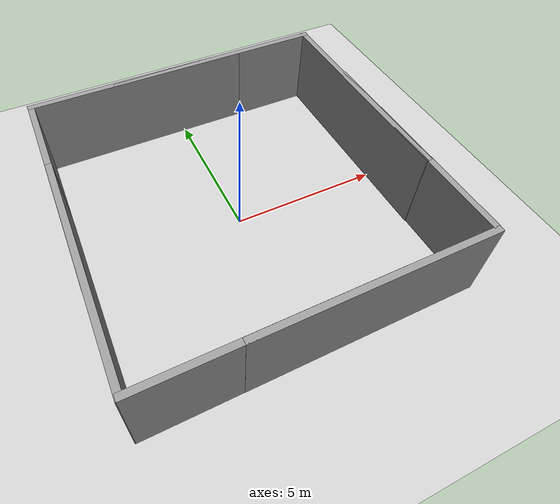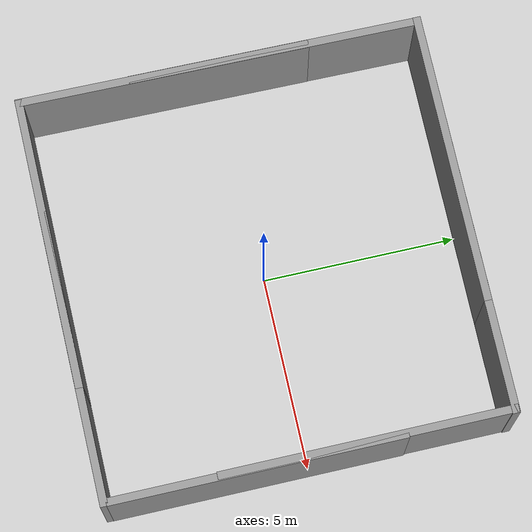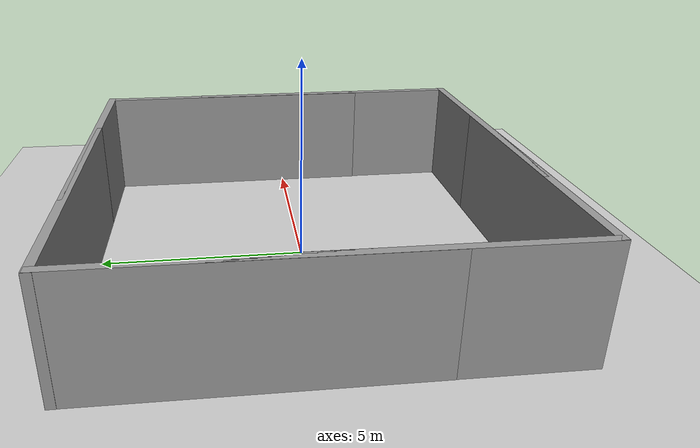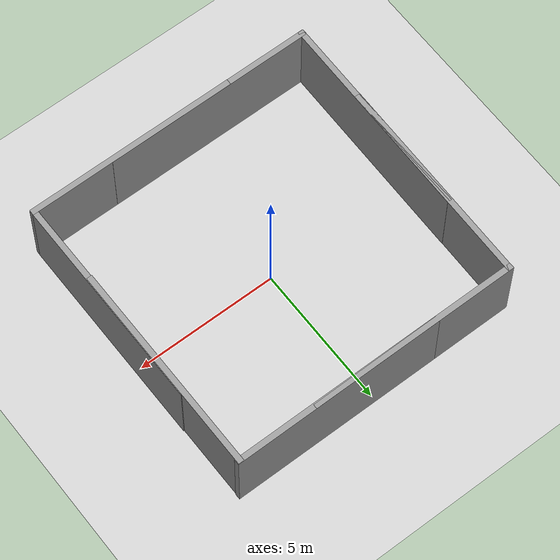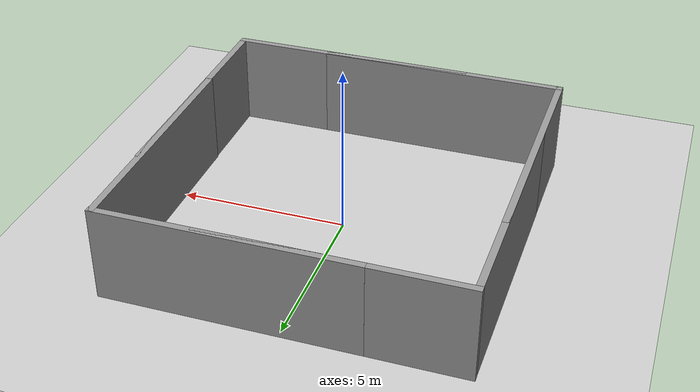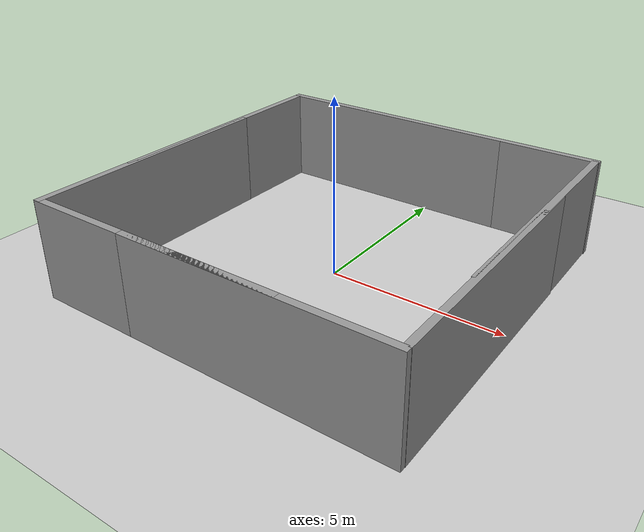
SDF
<sdf version="1.7">
 <world name="default">
  <light name="sun" type="directional">
   <pose>0 0 10 0 -0 0</pose>
   <diffuse>0.8 0.8 0.8 1</diffuse>
   <specular>0.2 0.2 0.2 1</specular>
   <attenuation>
    <range>1000</range>
    <constant>0.9</constant>
    <linear>0.01</linear>
    <quadratic>0.001</quadratic>
   </attenuation>
   <direction>-0.5 0.1 -0.9</direction>
   <spot><inner_angle>0</inner_angle><outer_angle>0</outer_angle><falloff>0</falloff></spot>
  </light>
  <model name="ground_plane">
   <static>1</static>
   <link name="link">
    <collision name="collision">
     <geometry><plane><normal>0 0 1</normal><size>100 100</size></plane></geometry>
     <surface>
      <contact><collide_bitmask>65535</collide_bitmask></contact>
      <friction><ode><mu>100</mu><mu2>50</mu2></ode></friction>
     </surface>
    </collision>
    <visual name="visual">
     <cast_shadows>0</cast_shadows>
     <geometry><plane><normal>0 0 1</normal><size>100 100</size></plane></geometry>
     <material>
      <script><uri>file://media/materials/scripts/gazebo.material</uri><name>Gazebo/Grey</name></script>
     </material>
    </visual>
   </link>
  </model>
  <gravity>0 0 -9.8</gravity>
  <magnetic_field>6e-06 2.3e-05 -4.2e-05</magnetic_field>
  <atmosphere type="adiabatic"/>
  <physics type="ode">
   <max_step_size>0.001</max_step_size>
   <real_time_factor>1</real_time_factor>
   <real_time_update_rate>1000</real_time_update_rate>
  </physics>
  <scene><ambient>0.4 0.4 0.4 1</ambient><background>0.7 0.7 0.7 1</background><shadows>1</shadows></scene>
  <spherical_coordinates>
   <surface_model>EARTH_WGS84</surface_model>
   <latitude_deg>0</latitude_deg>
   <longitude_deg>0</longitude_deg>
   <elevation>0</elevation>
   <heading_deg>0</heading_deg>
  </spherical_coordinates>
  <model name="grey_wall">
   <static>1</static>
   <link name="link">
    <pose>0 0 1.4 0 -0 0</pose>
    <collision name="collision"><geometry><box><size>7.5 0.2 2.8</size></box></geometry></collision>
    <visual name="visual">
     <cast_shadows>0</cast_shadows>
     <geometry><box><size>7.5 0.2 2.8</size></box></geometry>
     <material>
      <script>
       <uri>model://grey_wall/materials/scripts</uri>
       <uri>model://grey_wall/materials/textures</uri>
       <name>vrc/grey_wall</name>
      </script>
     </material>
    </visual>
   </link>
   <pose>1.43974 5.1169 0 0 -0 0</pose>
  </model>
  <model name="grey_wall_clone_1">
   <static>1</static>
   <link name="link">
    <pose>0 0 1.4 0 -0 0</pose>
    <collision name="collision"><geometry><box><size>7.5 0.2 2.8</size></box></geometry></collision>
    <visual name="visual">
     <cast_shadows>0</cast_shadows>
     <geometry><box><size>7.5 0.2 2.8</size></box></geometry>
     <material>
      <script>
       <uri>model://grey_wall/materials/scripts</uri>
       <uri>model://grey_wall/materials/textures</uri>
       <name>vrc/grey_wall</name>
      </script>
     </material>
    </visual>
   </link>
   <pose>1.46429 -5.11045 -0 0 -0 0</pose>
  </model>
  <model name="grey_wall_clone_4_clone_3">
   <static>1</static>
   <link name="link">
    <pose>0 0 1.4 0 -0 0</pose>
    <collision name="collision"><geometry><box><size>7.5 0.2 2.8</size></box></geometry></collision>
    <visual name="visual">
     <cast_shadows>0</cast_shadows>
     <geometry><box><size>7.5 0.2 2.8</size></box></geometry>
     <material>
      <script>
       <uri>model://grey_wall/materials/scripts</uri>
       <uri>model://grey_wall/materials/textures</uri>
       <name>vrc/grey_wall</name>
      </script>
     </material>
    </visual>
   </link>
   <pose>5.11088 -1.30025 0 0 -0 1.57339</pose>
  </model>
  <model name="grey_wall_clone_4_clone_11">
   <static>1</static>
   <link name="link">
    <pose>0 0 1.4 0 -0 0</pose>
    <collision name="collision"><geometry><box><size>7.5 0.2 2.8</size></box></geometry></collision>
    <visual name="visual">
     <cast_shadows>0</cast_shadows>
     <geometry><box><size>7.5 0.2 2.8</size></box></geometry>
     <material>
      <script>
       <uri>model://grey_wall/materials/scripts</uri>
       <uri>model://grey_wall/materials/textures</uri>
       <name>vrc/grey_wall</name>
      </script>
     </material>
    </visual>
   </link>
   <pose>-5.11203 1.44687 0 0 -0 1.56079</pose>
  </model>
  <model name="grey_wall_clone_5">
   <static>1</static>
   <link name="link">
    <pose>0 0 1.4 0 -0 0</pose>
    <collision name="collision"><geometry><box><size>7.5 0.2 2.8</size></box></geometry></collision>
    <visual name="visual">
     <cast_shadows>0</cast_shadows>
     <geometry><box><size>7.5 0.2 2.8</size></box></geometry>
     <material>
      <script>
       <uri>model://grey_wall/materials/scripts</uri>
       <uri>model://grey_wall/materials/textures</uri>
       <name>vrc/grey_wall</name>
      </script>
     </material>
    </visual>
   </link>
   <pose>-1.43007 5.11632 0 0 -0 0</pose>
  </model>
  <model name="grey_wall_clone_9">
   <static>1</static>
   <link name="link">
    <pose>0 0 1.4 0 -0 0</pose>
    <collision name="collision"><geometry><box><size>7.5 0.2 2.8</size></box></geometry></collision>
    <visual name="visual">
     <cast_shadows>0</cast_shadows>
     <geometry><box><size>7.5 0.2 2.8</size></box></geometry>
     <material>
      <script>
       <uri>model://grey_wall/materials/scripts</uri>
       <uri>model://grey_wall/materials/textures</uri>
       <name>vrc/grey_wall</name>
      </script>
     </material>
    </visual>
   </link>
   <pose>-1.50246 -5.10751 0 0 -0 0</pose>
  </model>
  <model name="grey_wall_clone_4_clone_3_clone">
   <static>1</static>
   <link name="link">
    <pose>0 0 1.4 0 -0 0</pose>
    <collision name="collision"><geometry><box><size>7.5 0.2 2.8</size></box></geometry></collision>
    <visual name="visual">
     <cast_shadows>0</cast_shadows>
     <geometry><box><size>7.5 0.2 2.8</size></box></geometry>
     <material>
      <script>
       <uri>model://grey_wall/materials/scripts</uri>
       <uri>model://grey_wall/materials/textures</uri>
       <name>vrc/grey_wall</name>
      </script>
     </material>
    </visual>
   </link>
   <pose>5.07961 1.45116 0 0 -0 1.57314</pose>
  </model>
  <model name="grey_wall_clone_4_clone_11_clone">
   <static>1</static>
   <link name="link">
    <pose>0 0 1.4 0 -0 0</pose>
    <collision name="collision"><geometry><box><size>7.5 0.2 2.8</size></box></geometry></collision>
    <visual name="visual">
     <cast_shadows>0</cast_shadows>
     <geometry><box><size>7.5 0.2 2.8</size></box></geometry>
     <material>
      <script>
       <uri>model://grey_wall/materials/scripts</uri>
       <uri>model://grey_wall/materials/textures</uri>
       <name>vrc/grey_wall</name>
      </script>
     </material>
    </visual>
   </link>
   <pose>-5.13588 -1.44854 0 0 -0 1.56079</pose>
  </model>
 </world>
</sdf>
